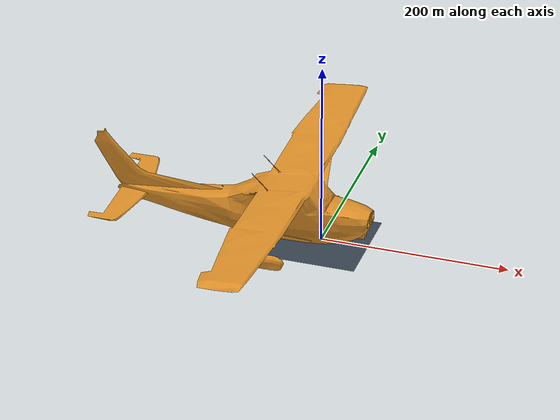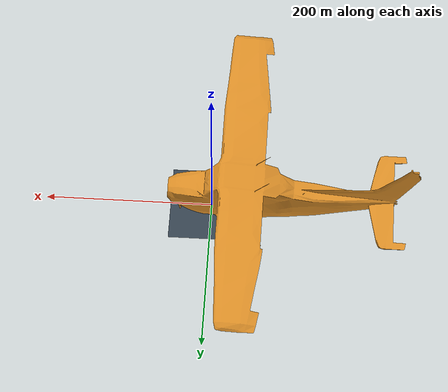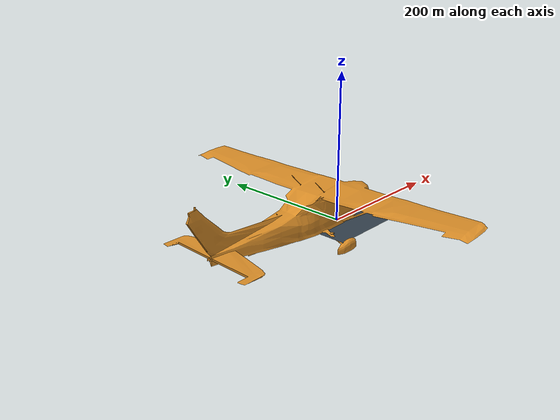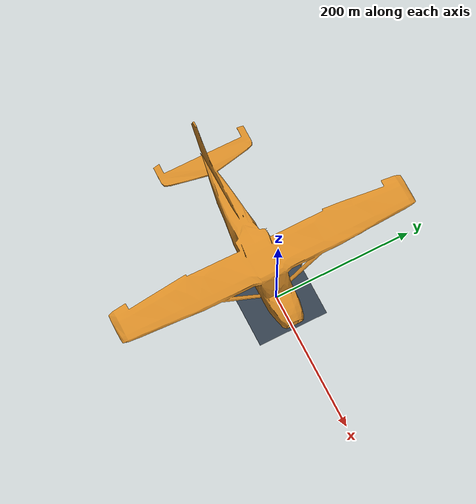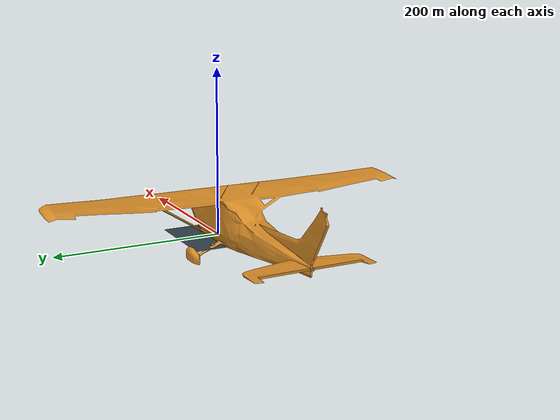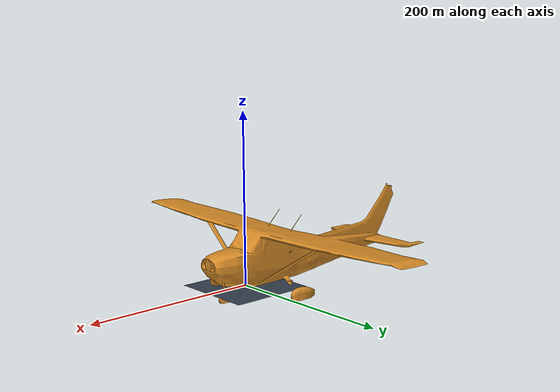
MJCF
<mujoco model="sesame-1.8x">

  <compiler angle="degree" coordinate="local" autolimits="true" meshdir="meshes"/>

  <option timestep="0.002" gravity="0 0 -9.81">
    <flag warmstart="enable"/>
  </option>

  <default>
    <joint limited="true" armature="0.01" damping="0.4" frictionloss="0.05"/>
    <geom condim="3" friction="0.8 0.005 0.001" margin="0.001"/>
    <position forcelimited="true" forcerange="-1.3 1.3" kp="3.0" ctrllimited="true"/>
    <site type="sphere" size="0.012" rgba="1 0.5 0 0.5"/>
  </default>

  <asset>
    <texture type="2d" name="grid" builtin="checker" width="512" height="512"
             rgb1="0.15 0.2 0.25" rgb2="0.25 0.3 0.35"/>
    <material name="grid" texture="grid" texrepeat="8 8" reflectance="0.15"/>
    <texture type="skybox" name="sky" builtin="gradient" width="512" height="512"
             rgb1="0.4 0.6 0.8" rgb2="0.05 0.1 0.2"/>

    <!-- Robot part meshes (transformed from STEP assembly to MuJoCo body-local coords) -->
    <mesh name="body_mesh" file="body.stl"/>
    <mesh name="fr_upper_mesh" file="fr_upper.stl"/>
    <mesh name="fl_upper_mesh" file="fl_upper.stl"/>
    <mesh name="rr_upper_mesh" file="rr_upper.stl"/>
    <mesh name="rl_upper_mesh" file="rl_upper.stl"/>
    <mesh name="fr_lower_mesh" file="fr_lower.stl"/>
    <mesh name="fl_lower_mesh" file="fl_lower.stl"/>
    <mesh name="rr_lower_mesh" file="rr_lower.stl"/>
    <mesh name="rl_lower_mesh" file="rl_lower.stl"/>
  </asset>

  <visual>
    <headlight diffuse="0.6 0.6 0.6" ambient="0.3 0.3 0.3" specular="0.1 0.1 0.1"/>
    <global azimuth="150" elevation="-25"/>
  </visual>

  <worldbody>
    <light diffuse="0.8 0.8 0.8" pos="0 0 3" dir="0 0 -1" castshadow="true"/>
    <light diffuse="0.3 0.3 0.3" pos="1 -1 2" dir="-0.3 0.3 -1"/>

    <!-- Ground plane -->
    <geom type="plane" size="50 50 0.1" material="grid" conaffinity="1" condim="3"/>

    <!-- ==================== TORSO ==================== -->
    <!--
      Body center height: 95mm (85mm from STEP + 10mm capsule radius offset)
      Body box: 130mm x 110mm x 44mm (includes servo volume)
    -->
    <body name="torso" pos="0 0 0.095">
      <freejoint name="root"/>
      <geom name="torso_geom" type="mesh" mesh="body_mesh"
            mass="0.5" rgba="0.85 0.55 0.15 1"/>

      <!-- Front indicator -->
      <geom name="nose" type="sphere" size="0.012" pos="0.065 0 0.025"
            rgba="0.9 0.2 0.2 1" mass="0.001" contype="0" conaffinity="0"/>

      <!-- Cameras -->
      <camera name="tracking" pos="0.4 -0.4 0.3" xyaxes="1 1 0 -0.2 0.2 1" mode="trackcom"/>
      <camera name="side" pos="0 -0.5 0.15" xyaxes="1 0 0 0 0.3 1" mode="trackcom"/>
      <camera name="top" pos="0 0 0.8" xyaxes="1 0 0 0 1 0" mode="trackcom"/>
      <camera name="front" pos="0.5 0 0.1" xyaxes="0 -1 0 0 0 1" mode="trackcom"/>

      <!-- ========== FRONT RIGHT LEG: R1 (hip) → R3 (knee) ========== -->
      <!--
        Hip at body corner: forward +35mm, right -45mm, up +2mm
        Upper leg: forward 66mm, outward 37mm, down 12mm (length 77mm)
        Lower leg: straight down 75mm
      -->
      <!-- ========== FRONT RIGHT LEG: R1 (hip) → R3 (knee) ========== -->
      <body name="fr_upper" pos="0.035 -0.045 0.002">
        <joint name="fr_hip" type="hinge" axis="0 0 1" range="-60 60" damping="0.5"/>
        <geom name="fr_upper_geom" type="mesh" mesh="fr_upper_mesh"
              mass="0.07" rgba="0.85 0.55 0.15 1"/>
        <body name="fr_lower" pos="0.066 -0.037 -0.012">
          <joint name="fr_ankle" type="hinge" axis="0 1 0" range="-60 60" damping="0.3"/>
          <geom name="fr_lower_geom" type="mesh" mesh="fr_lower_mesh"
                mass="0.04" rgba="0.85 0.55 0.15 1"/>
          <site name="fr_foot" pos="0 0 -0.075"/>
        </body>
      </body>

      <!-- ========== FRONT LEFT LEG: L1 (hip) → L3 (knee) ========== -->
      <body name="fl_upper" pos="0.035 0.046 0.002">
        <joint name="fl_hip" type="hinge" axis="0 0 1" range="-60 60" damping="0.5"/>
        <geom name="fl_upper_geom" type="mesh" mesh="fl_upper_mesh"
              mass="0.07" rgba="0.85 0.55 0.15 1"/>
        <body name="fl_lower" pos="0.066 0.037 -0.012">
          <joint name="fl_ankle" type="hinge" axis="0 1 0" range="-60 60" damping="0.3"/>
          <geom name="fl_lower_geom" type="mesh" mesh="fl_lower_mesh"
                mass="0.04" rgba="0.85 0.55 0.15 1"/>
          <site name="fl_foot" pos="0 0 -0.075"/>
        </body>
      </body>

      <!-- ========== REAR RIGHT LEG: R2 (hip) → R4 (knee) ========== -->
      <body name="rr_upper" pos="-0.033 -0.045 0.002">
        <joint name="rr_hip" type="hinge" axis="0 0 1" range="-60 60" damping="0.5"/>
        <geom name="rr_upper_geom" type="mesh" mesh="rr_upper_mesh"
              mass="0.07" rgba="0.85 0.55 0.15 1"/>
        <body name="rr_lower" pos="-0.066 -0.037 -0.012">
          <joint name="rr_ankle" type="hinge" axis="0 1 0" range="-60 60" damping="0.3"/>
          <geom name="rr_lower_geom" type="mesh" mesh="rr_lower_mesh"
                mass="0.04" rgba="0.85 0.55 0.15 1"/>
          <site name="rr_foot" pos="0 0 -0.075"/>
        </body>
      </body>

      <!-- ========== REAR LEFT LEG: L2 (hip) → L4 (knee) ========== -->
      <body name="rl_upper" pos="-0.033 0.046 0.002">
        <joint name="rl_hip" type="hinge" axis="0 0 1" range="-60 60" damping="0.5"/>
        <geom name="rl_upper_geom" type="mesh" mesh="rl_upper_mesh"
              mass="0.07" rgba="0.85 0.55 0.15 1"/>
        <body name="rl_lower" pos="-0.066 0.037 -0.012">
          <joint name="rl_ankle" type="hinge" axis="0 1 0" range="-60 60" damping="0.3"/>
          <geom name="rl_lower_geom" type="mesh" mesh="rl_lower_mesh"
                mass="0.04" rgba="0.85 0.55 0.15 1"/>
          <site name="rl_foot" pos="0 0 -0.075"/>
        </body>
      </body>
    </body>
  </worldbody>

  <sensor>
    <touch name="fr_touch" site="fr_foot"/>
    <touch name="fl_touch" site="fl_foot"/>
    <touch name="rr_touch" site="rr_foot"/>
    <touch name="rl_touch" site="rl_foot"/>
  </sensor>

  <!--
    Actuators in kinematic tree order.
    ctrlrange in radians (not affected by angle="degree").
  -->
  <actuator>
    <position name="fr_hip_ctrl"    joint="fr_hip"    ctrlrange="-1.047 1.047"/>
    <position name="fr_ankle_ctrl"  joint="fr_ankle"  ctrlrange="-1.047 1.047"/>
    <position name="fl_hip_ctrl"    joint="fl_hip"    ctrlrange="-1.047 1.047"/>
    <position name="fl_ankle_ctrl"  joint="fl_ankle"  ctrlrange="-1.047 1.047"/>
    <position name="rr_hip_ctrl"    joint="rr_hip"    ctrlrange="-1.047 1.047"/>
    <position name="rr_ankle_ctrl"  joint="rr_ankle"  ctrlrange="-1.047 1.047"/>
    <position name="rl_hip_ctrl"    joint="rl_hip"    ctrlrange="-1.047 1.047"/>
    <position name="rl_ankle_ctrl"  joint="rl_ankle"  ctrlrange="-1.047 1.047"/>
  </actuator>

  <keyframe>
    <key name="home" qpos="0 0 0.095 1 0 0 0  0 0 0 0 0 0 0 0"/>
  </keyframe>
</mujoco>
